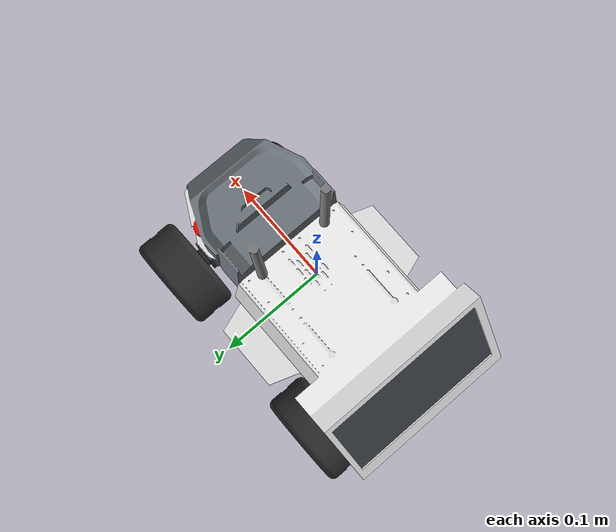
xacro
<?xml version="1.0"?>

<robot name="limo_omni" xmlns:xacro="http://ros.org/wiki/xacro">

    <xacro:include filename="$(find limo_description)/urdf/limo_xacro.xacro" />
    <xacro:include filename="$(find limo_description)/urdf/limo_omnidirectional.gazebo" />

    <!-- Variables -->
    <xacro:property name="M_PI" value="3.14159" />

    <xacro:property name="wheelbase" value="0.2" />
    <xacro:property name="track" value="0.13" />
    <xacro:property name="wheel_vertical_offset" value="-0.10" />
    <xacro:property name="base_mass" value="4.1557" />

    <xacro:property name="wheel_length" value="0.0437" />
    <xacro:property name="wheel_radius" value="0.048" />

    <link name="base_footprint" />

    <joint name="base_joint" type="fixed">
        <parent link="base_link" />
        <child link="base_footprint" />
        <origin xyz="0.0 0.0 -0.15" rpy="0 0 0" />
    </joint>

    <!-- Base link -->
    <link name="base_link">
        <visual>
            <origin xyz="0 0 -0.15" rpy="0 0 1.57" />
            <geometry>
                <mesh filename="package://limo_description/meshes/limo_base.dae" />
            </geometry>
        </visual>
        <collision>
            <origin xyz="0 0 -0.15" rpy="0 0 1.57" />
            <geometry>
                <mesh filename="package://limo_description/meshes/limo_collision.stl" />
            </geometry>
        </collision>
        <inertial>
            <origin xyz="0.0 0.0 0.0" />
            <mass value="${base_mass}" />
            <inertia ixx="0.03" ixy="0" ixz="0"
                iyy="0.03" iyz="0"
                izz="0.06" />
        </inertial>
    </link>

    <xacro:limo_laser parent_prefix="base_link" frame_prefix="laser">
        <origin xyz="0.103 0 -0.034" rpy="0 0 0" />
    </xacro:limo_laser>

    <xacro:limo_depth_camera parent_prefix="base_link" frame_prefix="depth_camera">
        <origin xyz="0.084 0 0.03" rpy="0 0 0" />
    </xacro:limo_depth_camera>

    <xacro:limo_imu parent_prefix="base_link" frame_prefix="imu">
        <origin xyz="0.0 0 -0.1" rpy="0 0 0" />
    </xacro:limo_imu>

    <xacro:limo_wheel parent_prefix="base_link" wheel_prefix="front_left" reflect="1">
        <origin xyz="${wheelbase/2} ${track/2} ${wheel_vertical_offset}" rpy="0 0 0" />
    </xacro:limo_wheel>

    <xacro:limo_wheel parent_prefix="base_link" wheel_prefix="front_right" reflect="-1">
        <origin xyz="${wheelbase/2} ${-track/2} ${wheel_vertical_offset}" rpy="0 0 0" />
    </xacro:limo_wheel>

    <xacro:limo_wheel parent_prefix="base_link" wheel_prefix="rear_left" reflect="1">
        <origin xyz="${-wheelbase/2} ${track/2} ${wheel_vertical_offset}" rpy="0 0 0" />
    </xacro:limo_wheel>

    <xacro:limo_wheel parent_prefix="base_link" wheel_prefix="rear_right" reflect="-1">
        <origin xyz="${-wheelbase/2} ${-track/2} ${wheel_vertical_offset}" rpy="0 0 0" />
    </xacro:limo_wheel>

</robot>

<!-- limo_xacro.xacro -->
<robot name="limo_xacro" xmlns:xacro="http://ros.org/wiki/xacro">
    <xacro:macro name="limo_wheel" params="parent_prefix wheel_prefix reflect *joint_pose">
        <link name="${wheel_prefix}_wheel_link">
            <inertial>
                <origin xyz="0 0.022 0" />
                <mass value="0.2" />
                <inertia ixx="0.000147" ixy="0" ixz="0" iyy="0.00023" iyz="0" izz="0.000147" />
            </inertial>
            <visual>
                <origin xyz="0 0 0" rpy="0 0 0" />
                <geometry>
                    <mesh filename="package://limo_description/meshes/limo_wheel.dae" />
                </geometry>
            </visual>
            <collision>
                <origin xyz="0 ${wheel_length/2} 0" rpy="1.57 0 0" />
                <geometry>
                    <cylinder length="${wheel_length}" radius="${wheel_radius}" />
                </geometry>
            </collision>
        </link>

        <joint name="${wheel_prefix}_wheel" type="continuous">
            <parent link="${parent_prefix}" />
            <child link="${wheel_prefix}_wheel_link" />
            <xacro:insert_block name="joint_pose" />
            <axis xyz="0 ${reflect*1} 0" />
        </joint>
    </xacro:macro>

    <xacro:macro name="limo_laser" params="parent_prefix frame_prefix *joint_pose">
        <link name='${frame_prefix}_link' />
        <joint type="fixed" name="laser_joint">
            <xacro:insert_block name="joint_pose" />
            <child link="${frame_prefix}_link" />
            <parent link="${parent_prefix}" />
        </joint>
    </xacro:macro>

    <xacro:macro name="limo_depth_camera" params="parent_prefix frame_prefix *joint_pose">
        <link name='${frame_prefix}_link' />

        <joint type="fixed" name="depth_camera_joint">
            <xacro:insert_block name="joint_pose" />
            <child link="${frame_prefix}_link" />
            <parent link="${parent_prefix}" />
        </joint>

        <link name="depth_link" />

        <joint name="${frame_prefix}_to_camera_joint" type="fixed">
            <origin xyz="0 0 0" rpy="${-M_PI/2} 0 ${-M_PI/2} " />
            <parent link="${frame_prefix}_link" />
            <child link="depth_link" />
        </joint>
    </xacro:macro>

    <xacro:macro name="limo_imu" params="parent_prefix frame_prefix  *joint_pose">
        <link name='${frame_prefix}_link' />
        <joint type="fixed" name="imu_joint">
            <xacro:insert_block name="joint_pose" />
            <child link="${frame_prefix}_link" />
            <parent link="${parent_prefix}" />
        </joint>
    </xacro:macro>

    <gazebo reference="${wheel_prefix}_wheel_link">
        <mu1>0.5</mu1>   <!-- Coeficiente de fricción longitudinal -->
        <mu2>0.5</mu2>   <!-- Coeficiente de fricción lateral -->
        <kp>1000.0</kp>  <!-- Incrementa el factor de rigidez -->
        <kd>10.0</kd>    <!-- Ajusta el amortiguamiento -->
    </gazebo>
</robot>
